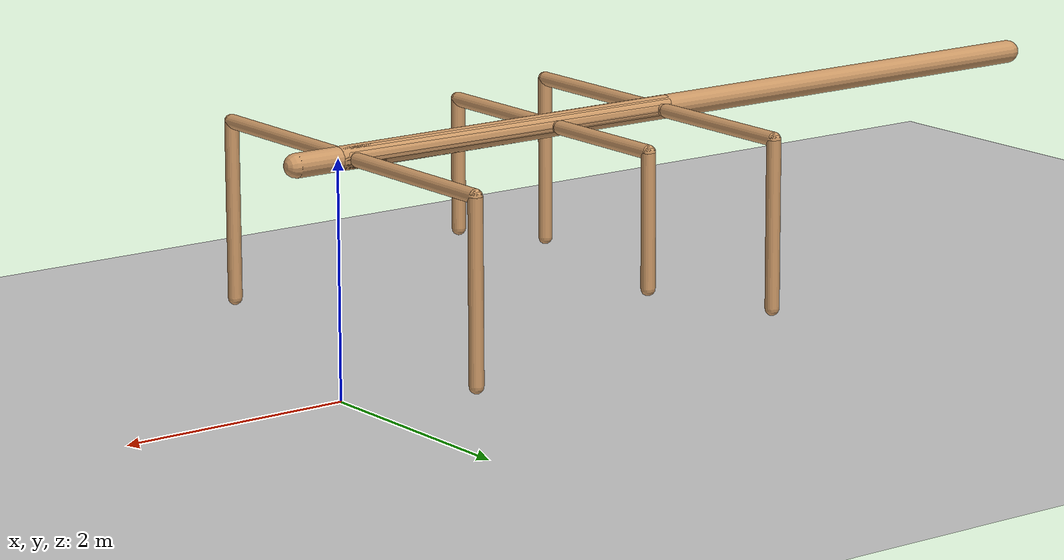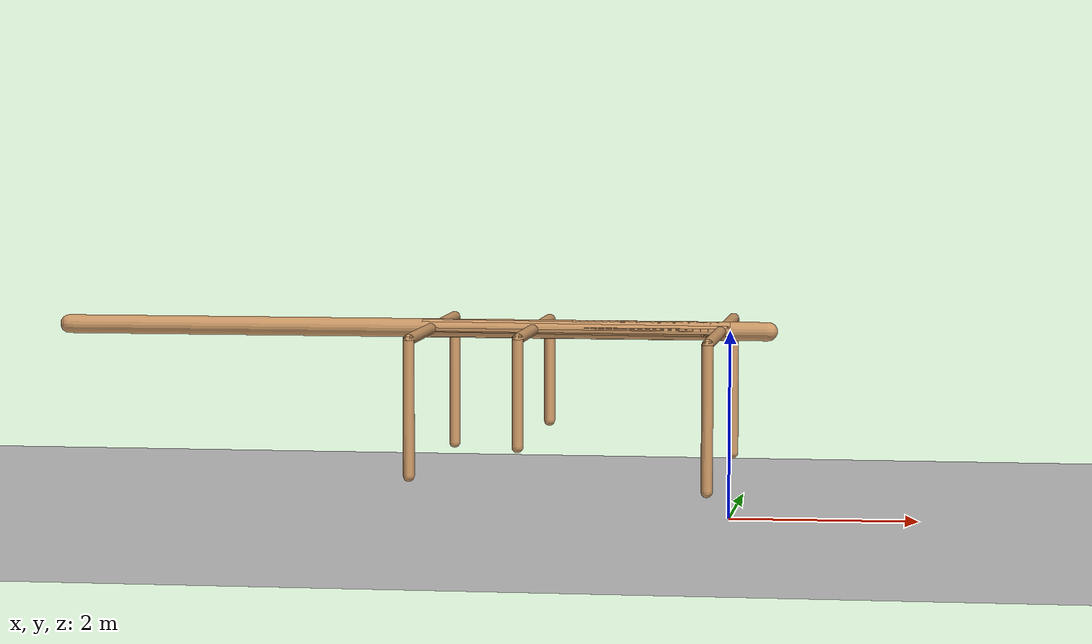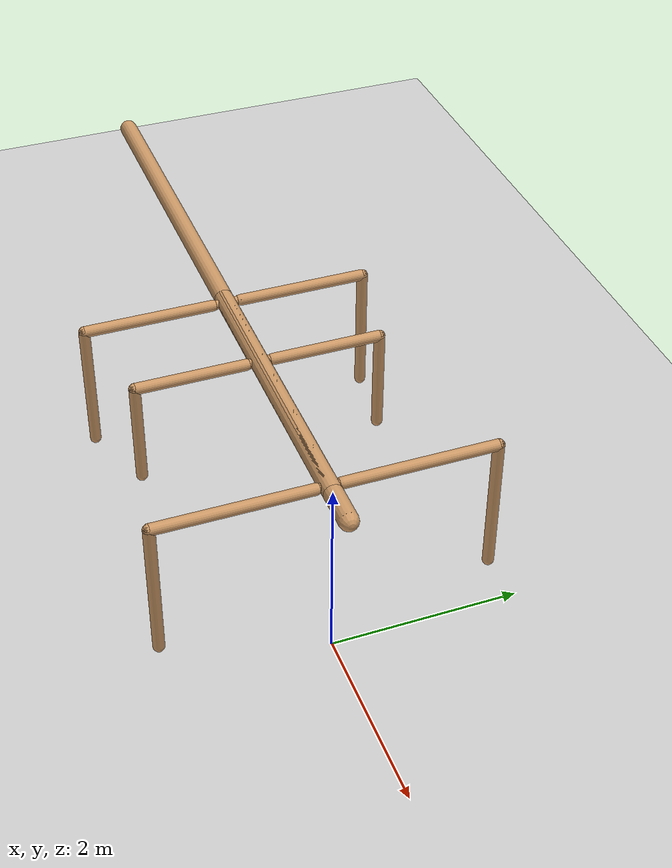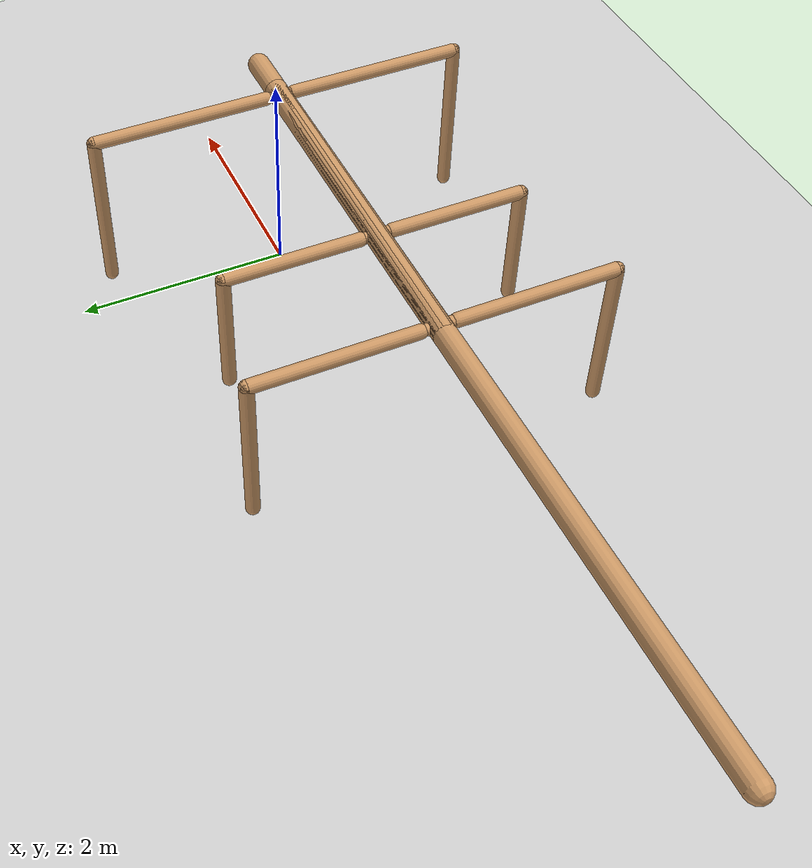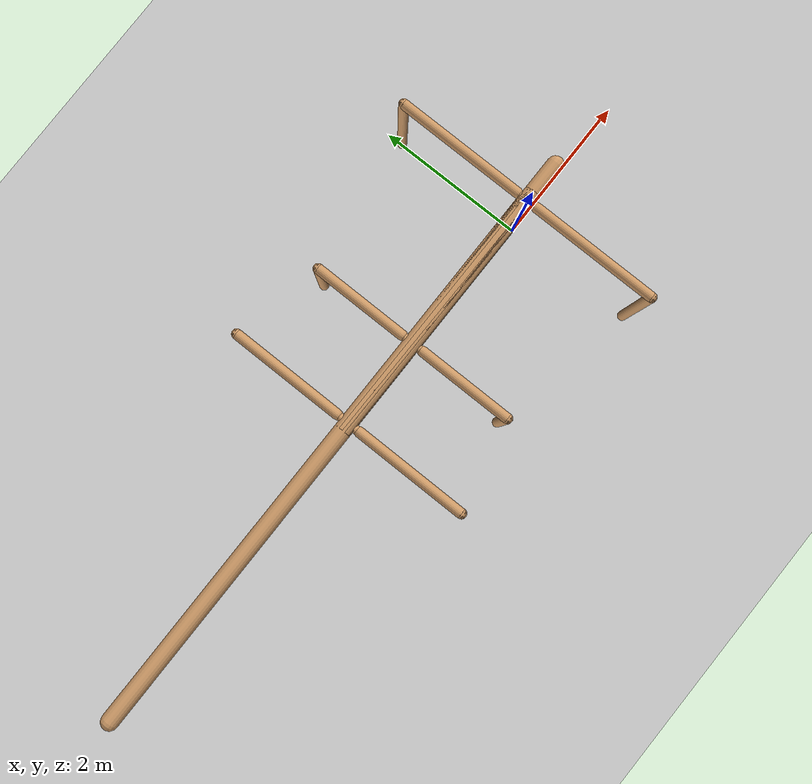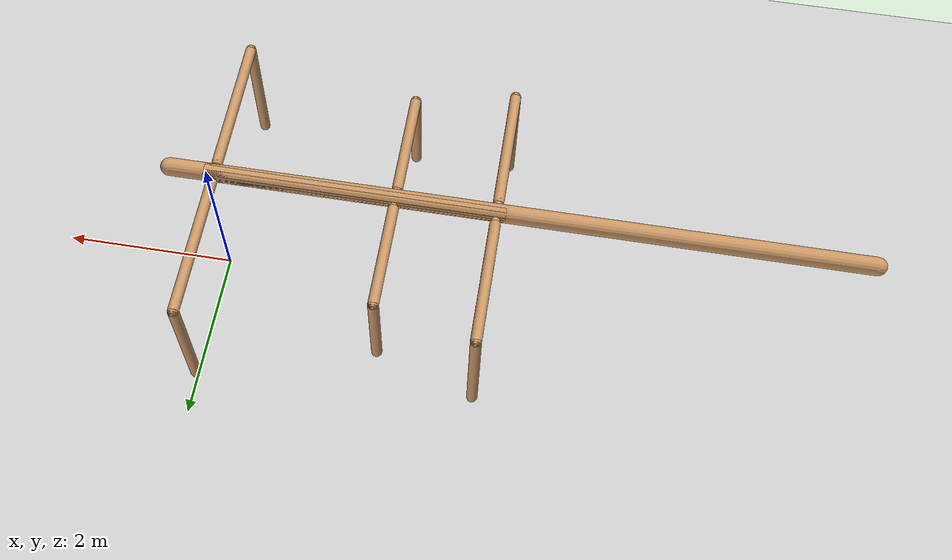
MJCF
<mujoco model="stickinsect">
  <compiler angle="degree" coordinate="local" inertiafromgeom="true"/>
  <option integrator="implicitfast" timestep="0.005"/> <!-- frequency [200,50] -->

  <default>
    <joint armature="1" damping="1" limited="true"/>
    <geom conaffinity="0" condim="3" density="5.0" friction="1 0.5 0.5" margin="0.01" rgba="0.8 0.6 0.4 1"/>
  </default>

  <asset>
    <texture builtin="gradient" height="100" rgb1="1 1 1" rgb2="0 0 0" type="skybox" width="100"/>
    <texture builtin="flat" height="1278" mark="cross" markrgb="1 1 1" name="texgeom" random="0.01" rgb1="0.8 0.6 0.4" rgb2="0.8 0.6 0.4" type="cube" width="127"/>
    <texture builtin="checker" height="100" name="texplane" rgb1=".25 .25 .25" rgb2=".3 .3 .3" type="2d" width="100" mark="cross" markrgb=".8 .8 .8"/>
    <material name="MatPlane" reflectance="0.5" shininess="1" specular="1" texrepeat="60 60" texture="texplane"/>
    <material name="geom" texture="texgeom" texuniform="true"/>
  </asset>

  <worldbody>
    <light cutoff="100" diffuse="1 1 1" dir="-0 0 -1.3" directional="true" exponent="1" pos="0 0 1.3" specular=".1 .1 .1"/>
    <geom conaffinity="1" condim="3" material="MatPlane" name="floor" pos="0 0 0" rgba="0.8 0.8 0.8 1" size="40 40 40" type="plane"/>
    <camera name="side" mode="fixed" pos="7 -17 2" xyaxes="1 0 0 0 0 1"/>
    <camera name="top" mode="fixed" pos="5 0 20" xyaxes="1 0 0 0 1 0"/>
    <camera name="fixed float" mode="fixed" pos="-2 -10 6" xyaxes="1 0 0 0 0 1"/>

    <body name="torso" pos="0 0 2">
      <geom name="head_geom" pos="0 0 0" fromto="0.0 0.0 0.0 0.4 0.0 0.0" size="0.1" type="capsule"/>
      <geom name="thorax_geom" pos="0 0 0" fromto="0.0 0.0 0.0 -3.3 0.0 0.0" size="0.1" type="capsule"/>
      <geom name="abdomen_geom" pos="0 0 0 " fromto="0.0 0.0 0.0 -7.2 0.0 0.0" size="0.1" type="capsule"/>
      <joint armature="0" damping="0" limited="false" margin="0.01" name="root" pos="0 0 0" type="free"/>

      <body name="LF_leg" pos="-0.1 0.0 0.0">
        <geom fromto="0.0 0.0 0.0 0.0 0.13 0.0" name="LF_cox_geom" size="0.05" type="capsule"/>
        <body name="LF_femur" pos="0.0 0.13 0">
          <joint axis="1 0 0" name="LF_CTr" pos="0.0 0.0 0.0" range="-25 32" type="hinge"/>
          <joint axis="0 0 -1" name="LF_ThC" pos="0.0 0.0 0.0" range="-5 71" type="hinge"/>
          <geom fromto="0.0 0.0 0.0 0.0 1.58 0.0" name="LF_femur_geom" size="0.06" type="capsule"/>
          <body pos="0.0 1.58 0.0">
            <joint axis="1 0 0" name="LF_FTi" pos="0.0 0.0 0.0" range="-43 56" type="hinge"/>
            <geom fromto="0.0 0.0 0.0 0.0 0.0 -1.50" name="LF_tibia_geom" size="0.06" type="capsule"/>
          </body>
        </body>
      </body>

      <body name="RF_leg" pos="-0.1 0.0 0.0">
        <geom fromto="0.0 0.0 0.0 0.0 -0.13 0.0" name="RF_cox_geom" size="0.05" type="capsule"/>
        <body name="RF_femur" pos="0.0 -0.13 0">
          <joint axis="-1 0 0" name="RF_CTr" pos="0.0 0.0 0.0" range="-25 32" type="hinge"/>
          <joint axis="0 0 1" name="RF_ThC" pos="0.0 0.0 0.0" range="-5 71" type="hinge"/>
          <geom fromto="0.0 0.0 0.0 0.0 -1.58 0.0" name="RF_femur_geom" size="0.06" type="capsule"/>
          <body pos="0.0 -1.58 0.0">
            <joint axis="-1 0 0" name="RF_FTi" pos="0.0 0.0 0.0" range="-43 56" type="hinge"/>
            <geom fromto="0.0 0.0 0.0 0.0 0.0 -1.50" name="RF_tibia_geom" size="0.06" type="capsule"/>
          </body>
        </body>
      </body>

      <body name="LM_leg" pos="-2.1 0.0 0.0">
        <geom fromto="0.0 0.0 0.0 0.0 0.14 0.0" name="LM_cox_geom" size="0.05" type="capsule" />
        <body name="LM_femur" pos="0.0 0.14 0">
          <joint axis="1 0 0" name="LM_CTr" pos="0.0 0.0 0.0" range="-24 34" type="hinge"/>
          <joint axis="0 0 -1" name="LM_ThC" pos="0.0 0.0 0.0" range="-48 30" type="hinge"/>
          <geom fromto="0.0 0.0 0.0 0.0 1.16 0.0" name="LM_femur_geom" size="0.06" type="capsule"/>
          <body pos="0.0 1.16 0.0">
            <joint axis="1 0 0" name="LM_FTi" pos="0.0 0.0 0.0" range="-50 79" type="hinge"/>
            <geom fromto="0.0 0.0 0.0 0.0 0.0 -1.12" name="LM_tibia_geom" size="0.06" type="capsule"/>
          </body>
        </body>
      </body>

      <body name="RM_leg" pos="-2.1 0.0 0.0">
        <geom fromto="0.0 0.0 0.0 0.0 -0.14 0.0" name="RM_cox_geom" size="0.05" type="capsule" />
        <body name="RM_femur" pos="0.0 -0.14 0">
          <joint axis="-1 0 0" name="RM_CTr" pos="0.0 0.0 0.0" range="-24 34" type="hinge"/>
          <joint axis="0 0 1" name="RM_ThC" pos="0.0 0.0 0.0" range="-48 30" type="hinge"/>
          <geom fromto="0.0 0.0 0.0 0.0 -1.16 0.0" name="RM_femur_geom" size="0.06" type="capsule"/>
          <body pos="0.0 -1.16 0.0">
            <joint axis="-1 0 0" name="RM_FTi" pos="0.0 0.0 0.0" range="-50 79" type="hinge"/>
            <geom fromto="0.0 0.0 0.0 0.0 0.0 -1.12" name="RM_tibia_geom" size="0.06" type="capsule"/>
          </body>
        </body>
      </body>

      <body name="LH_leg" pos="-3.2 0.0 0.0">
        <geom fromto="0.0 0.0 0.0 0.0 0.15 0.0" name="LH_cox_geom" size="0.05" type="capsule"/>
        <body name="LH_femur" pos="0.0 0.15 0">
          <joint axis="1 0 0" name="LH_CTr" pos="0.0 0.0 0.0" range="-10 50" type="hinge"/>
          <joint axis="0 0 -1" name="LH_ThC" pos="0.0 0.0 0.0" range="-65 -10" type="hinge"/>
          <geom fromto="0.0 0.0 0.0 0.0 1.39 0.0" name="LH_femur_geom" size="0.06" type="capsule"/>
          <body pos="0.0 1.39 0.0">
            <joint axis="1 0 0" name="LH_FTi" pos="0.0 0.0 0.0" range="-51 78" type="hinge"/>
            <geom fromto="0.0 0.0 0.0 0.0 0.0 -1.41" name="LH_tibia_geom" size="0.06" type="capsule"/>
          </body>
        </body>
      </body>

      <body name="RH_leg" pos="-3.2 0.0 0.0">
        <geom fromto="0.0 0.0 0.0 0.0 -0.15 0.0" name="RH_cox_geom" size="0.05" type="capsule"/>
        <body name="RH_femur" pos="0.0 -0.15 0">
          <joint axis="-1 0 0" name="RH_CTr" pos="0.0 0.0 0.0" range="-10 50" type="hinge"/>
          <joint axis="0 0 1" name="RH_ThC" pos="0.0 0.0 0.0" range="-65 -10" type="hinge"/>
          <geom fromto="0.0 0.0 0.0 0.0 -1.39 0.0" name="RH_femur_geom" size="0.06" type="capsule"/>
          <body pos="0.0 -1.39 0.0">
            <joint axis="-1 0 0" name="RH_FTi" pos="0.0 0.0 0.0" range="-51 78" type="hinge"/>
            <geom fromto="0.0 0.0 0.0 0.0 0.0 -1.41" name="RH_tibia_geom" size="0.06" type="capsule"/>
          </body>
        </body>
      </body>

    </body>
  </worldbody>

  <actuator>

    <position ctrllimited="true" ctrlrange="-3.141592654 3.141592654" joint="LF_CTr" gear="1" kp="300" kv="100"/>
    <position ctrllimited="true" ctrlrange="-3.141592654 3.141592654" joint="LM_CTr" gear="1" kp="300" kv="100"/>
    <position ctrllimited="true" ctrlrange="-3.141592654 3.141592654" joint="LH_CTr" gear="1" kp="300" kv="100"/>
    <position ctrllimited="true" ctrlrange="-3.141592654 3.141592654" joint="RF_CTr" gear="1" kp="300" kv="100"/>
    <position ctrllimited="true" ctrlrange="-3.141592654 3.141592654" joint="RM_CTr" gear="1" kp="300" kv="100"/>
    <position ctrllimited="true" ctrlrange="-3.141592654 3.141592654" joint="RH_CTr" gear="1" kp="300" kv="100"/>

    <position ctrllimited="true" ctrlrange="-3.141592654 3.141592654" joint="LF_ThC" gear="1" kp="300" kv="100"/>
    <position ctrllimited="true" ctrlrange="-3.141592654 3.141592654" joint="LM_ThC" gear="1" kp="300" kv="100"/>
    <position ctrllimited="true" ctrlrange="-3.141592654 3.141592654" joint="LH_ThC" gear="1" kp="300" kv="100"/>
    <position ctrllimited="true" ctrlrange="-3.141592654 3.141592654" joint="RF_ThC" gear="1" kp="300" kv="100"/>
    <position ctrllimited="true" ctrlrange="-3.141592654 3.141592654" joint="RM_ThC" gear="1" kp="300" kv="100"/>
    <position ctrllimited="true" ctrlrange="-3.141592654 3.141592654" joint="RH_ThC" gear="1" kp="300" kv="100"/>

    <position ctrllimited="true" ctrlrange="-3.141592654 3.141592654" joint="LF_FTi" gear="1" kp="300" kv="100"/>
    <position ctrllimited="true" ctrlrange="-3.141592654 3.141592654" joint="LM_FTi" gear="1" kp="300" kv="100"/>
    <position ctrllimited="true" ctrlrange="-3.141592654 3.141592654" joint="LH_FTi" gear="1" kp="300" kv="100"/>
    <position ctrllimited="true" ctrlrange="-3.141592654 3.141592654" joint="RF_FTi" gear="1" kp="300" kv="100"/>
    <position ctrllimited="true" ctrlrange="-3.141592654 3.141592654" joint="RM_FTi" gear="1" kp="300" kv="100"/>
    <position ctrllimited="true" ctrlrange="-3.141592654 3.141592654" joint="RH_FTi" gear="1" kp="300" kv="100"/>

    <velocity joint="LF_CTr" gear="1" ctrllimited="true" ctrlrange="-600 600"/>
    <velocity joint="LM_CTr" gear="1" ctrllimited="true" ctrlrange="-600 600"/>
    <velocity joint="LH_CTr" gear="1" ctrllimited="true" ctrlrange="-600 600"/>
    <velocity joint="RF_CTr" gear="1" ctrllimited="true" ctrlrange="-600 600"/>
    <velocity joint="RM_CTr" gear="1" ctrllimited="true" ctrlrange="-600 600"/>
    <velocity joint="RH_CTr" gear="1" ctrllimited="true" ctrlrange="-600 600"/>

    <velocity joint="LF_ThC" gear="1" ctrllimited="true" ctrlrange="-600 600"/>
    <velocity joint="LM_ThC" gear="1" ctrllimited="true" ctrlrange="-600 600"/>
    <velocity joint="LH_ThC" gear="1" ctrllimited="true" ctrlrange="-600 600"/>
    <velocity joint="RF_ThC" gear="1" ctrllimited="true" ctrlrange="-600 600"/>
    <velocity joint="RM_ThC" gear="1" ctrllimited="true" ctrlrange="-600 600"/>
    <velocity joint="RH_ThC" gear="1" ctrllimited="true" ctrlrange="-600 600"/>

    <velocity joint="LF_FTi" gear="1" ctrllimited="true" ctrlrange="-600 600"/>
    <velocity joint="LM_FTi" gear="1" ctrllimited="true" ctrlrange="-600 600"/>
    <velocity joint="LH_FTi" gear="1" ctrllimited="true" ctrlrange="-600 600"/>
    <velocity joint="RF_FTi" gear="1" ctrllimited="true" ctrlrange="-600 600"/>
    <velocity joint="RM_FTi" gear="1" ctrllimited="true" ctrlrange="-600 600"/>
    <velocity joint="RH_FTi" gear="1" ctrllimited="true" ctrlrange="-600 600"/>

  </actuator>

</mujoco>
